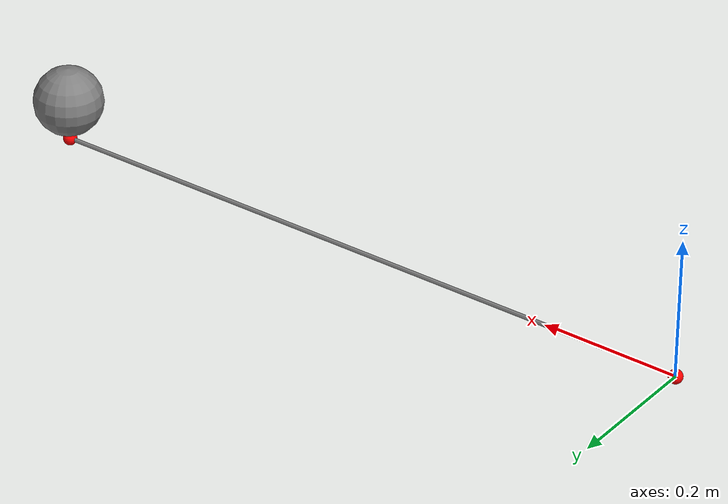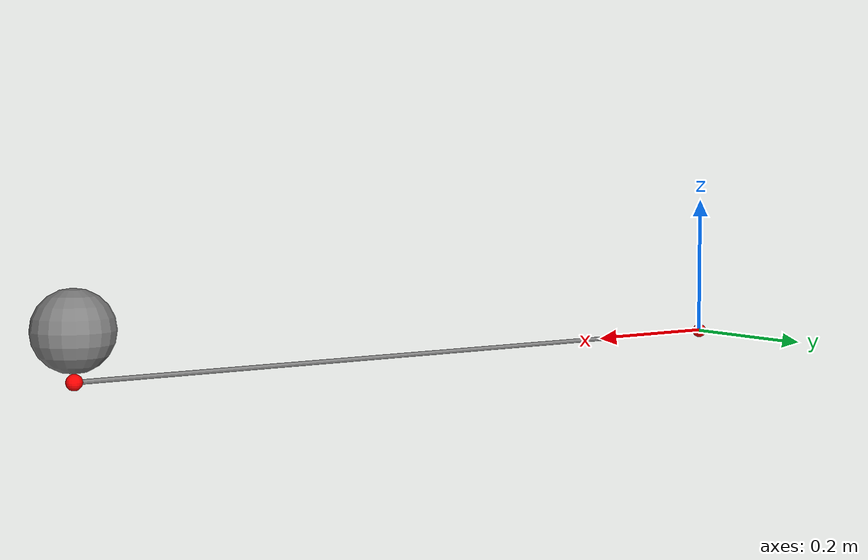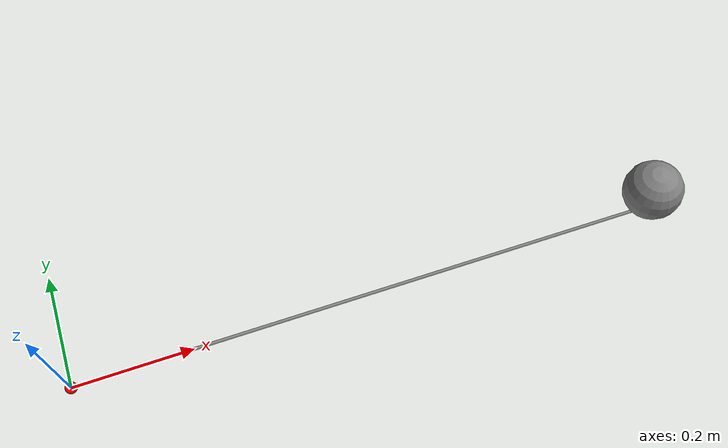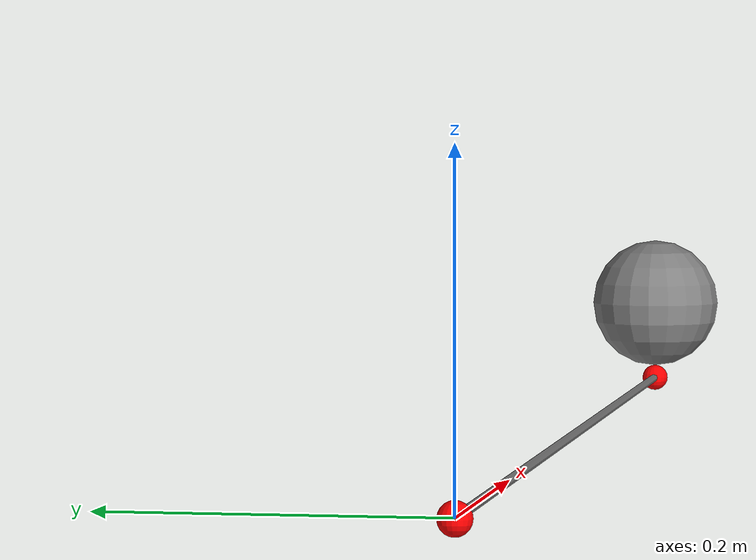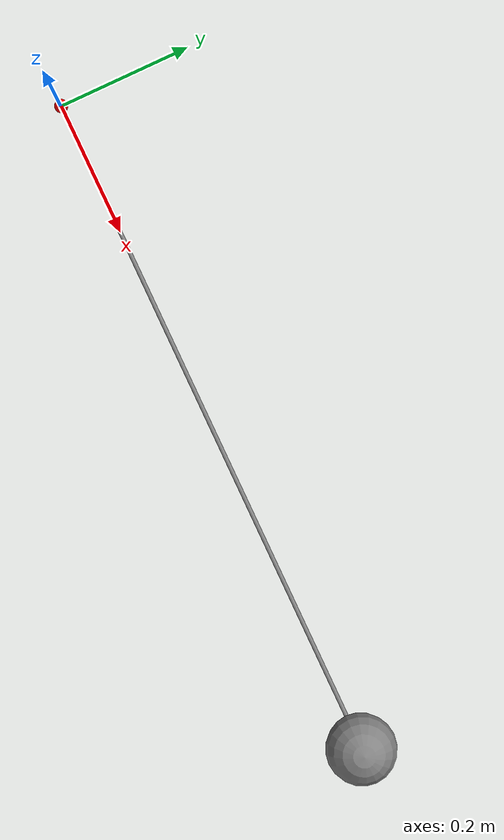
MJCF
<mujoco>
  <!-- use Runge-Kutta for better energy conservation -->
  <option integrator="RK4">
    <flag energy="enable"/>
  </option>

  <statistic center="0 0 0"/>

  <worldbody>
    <site name="origin" size=".01" rgba="1 0 0 1"/>
    <light pos="0 0 3"/>

    <body pos="1 0 .06">
      <joint type="slide" axis="1 0 0"/>
      <geom size=".05"/>
      <site name="attachment" size=".01" pos="0 0 -.06" rgba="1 0 0 1"/>
    </body>
  </worldbody>

  <tendon>
    <spatial name="tendon" stiffness="10" springlength="0 .5">
      <site site="origin"/>
      <site site="attachment"/>
    </spatial>
  </tendon>

  <sensor>
    <tendonpos tendon="tendon"/>
  </sensor>
</mujoco>
